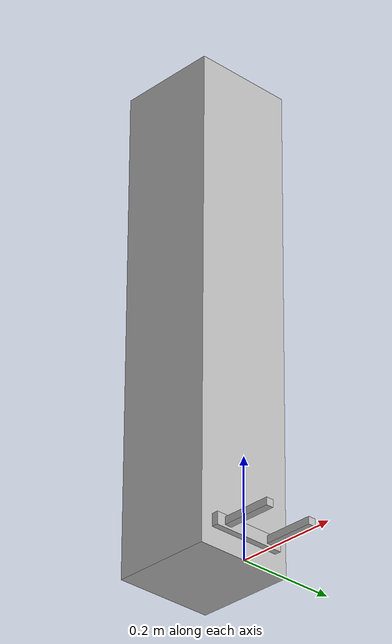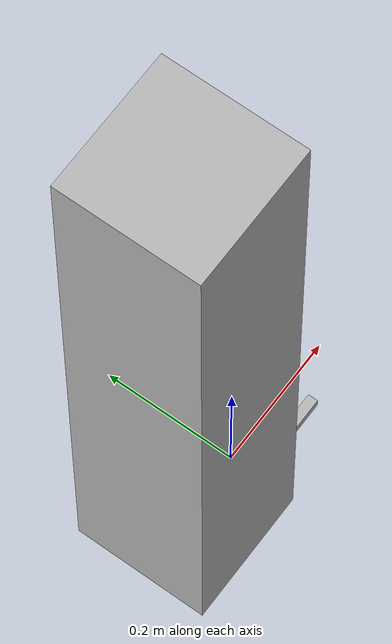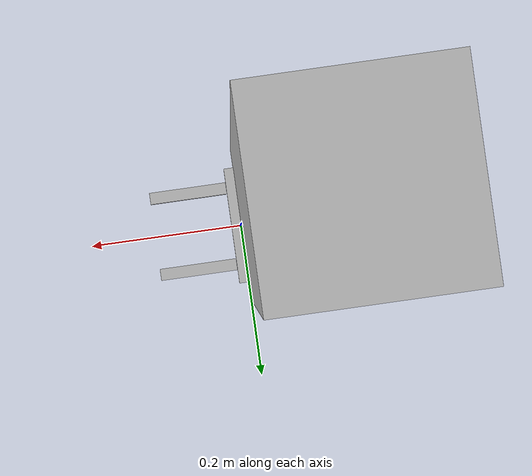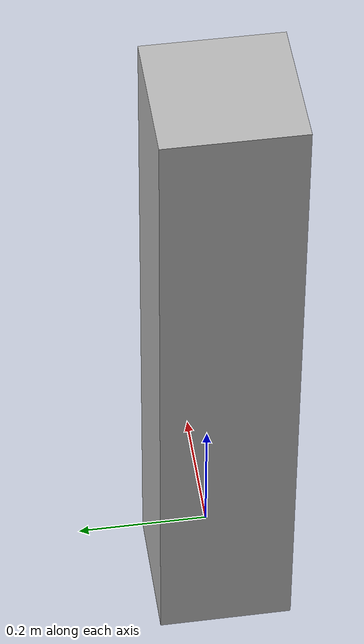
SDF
<?xml version="1.0"?>
<sdf version="1.6">
    <model name="grabber">

        <link name="riser">
            <pose>-0.1 0.0 0.5 0 0 0</pose>
            <inertial>
                <pose>0 0 -0.5 0 0 0</pose>
                <inertia>
                    <ixx>0.01</ixx>
                    <ixy>0</ixy>
                    <ixz>0</ixz>
                    <iyy>0.01</iyy>
                    <iyz>0</iyz>
                    <izz>0.01</izz>
                </inertia>
                <mass>10.0</mass>
            </inertial>
            <collision name="collision">
                <geometry>
                    <box>
                        <size>0.2 0.2 1.0</size>
                    </box>
                </geometry>
            </collision>
            <visual name="visual">
                <geometry>
                    <box>
                        <size>0.2 0.2 1.0</size>
                    </box>
                </geometry>
                <material>
                    <script>Gazebo/Purple</script>
                </material>
            </visual>
        </link>

        <link name="palm">
            <pose>0.0 0.0 0.05 0 0 0</pose>
            <inertial>
                <inertia>
                    <ixx>0.000189</ixx>
                    <ixy>0</ixy>
                    <ixz>0</ixz>
                    <iyy>0.000010</iyy>
                    <iyz>0</iyz>
                    <izz>0.000189</izz>
                </inertia>
                <mass>0.0985</mass>
            </inertial>
            <collision name="collision">
                <geometry>
                    <box>
                        <size>0.025 0.15 0.025</size>
                    </box>
                </geometry>
                <surface>
                    <contact>
                        <collide_bitmask>0xffff</collide_bitmask>
                    </contact>
                    <friction>
                        <ode>
                        <mu>100</mu>
                        <mu2>50</mu2>
                        </ode>
                    </friction>
                </surface>
            </collision>
            <visual name="visual">
                <geometry>
                    <box>
                        <size>0.025 0.15 0.025</size>
                    </box>
                </geometry>
                <material>
                    <script>Gazebo/Red</script>
                </material>
            </visual>
        </link>
        <link name="left_finger">
            <pose>0.0628 0.05 0.05 0 0 -1.57</pose>
            <inertial>
                <inertia>
                    <ixx>0.000020</ixx>
                    <ixy>0</ixy>
                    <ixz>0</ixz>
                    <iyy>0.0000008859</iyy>
                    <iyz>0</iyz>
                    <izz>0.000020</izz>
                </inertia>
                <mass>0.023625</mass>
            </inertial>
            <collision name="collision">
                <geometry>
                    <box>
                        <size>0.015 0.1 0.015</size>
                    </box>
                </geometry>
                <surface>
                    <contact>
                        <collide_bitmask>0xffff</collide_bitmask>
                    </contact>
                    <friction>
                        <ode>
                        <mu>100</mu>
                        <mu2>50</mu2>
                        </ode>
                    </friction>
                </surface>
            </collision>
            <visual name="visual">
                <geometry>
                    <box>
                        <size>0.015 0.1 0.015</size>
                    </box>
                </geometry>
                <material>
                    <script>Gazebo/Blue</script>
                </material>
            </visual>
        </link>
        <link name="right_finger">
            <pose>0.0628 -0.05 0.05 0 0 -1.57</pose>
            <inertial>
                <inertia>
                    <ixx>0.000020</ixx>
                    <ixy>0</ixy>
                    <ixz>0</ixz>
                    <iyy>0.0000008859</iyy>
                    <iyz>0</iyz>
                    <izz>0.000020</izz>
                </inertia>
                <mass>0.023625</mass>
            </inertial>
            <collision name="collision">
                <geometry>
                    <box>
                        <size>0.015 0.1 0.015</size>
                    </box>
                </geometry>
                <surface>
                    <contact>
                        <collide_bitmask>0xffff</collide_bitmask>
                    </contact>
                    <friction>
                        <ode>
                        <mu>100</mu>
                        <mu2>50</mu2>
                        </ode>
                    </friction>
                </surface>
            </collision>
            <visual name="visual">
                <geometry>
                    <box>
                        <size>0.015 0.1 0.015</size>
                    </box>
                </geometry>
                <material>
                    <script>Gazebo/Blue</script>
                </material>
            </visual>
        </link>

        <joint name="right_hand" type="prismatic">
            <parent>right_finger</parent>
            <child>palm</child>
            <axis>
                <limit>
                    <lower>0</lower>
                    <upper>0.04</upper>
                    <velocity>0.01</velocity>
                </limit>
                <xyz>0 -1 0</xyz>
            </axis>
        </joint>
        <joint name="left_hand" type="prismatic">
            <parent>left_finger</parent>
            <child>palm</child>
            <axis>
                <limit>
                    <lower>0</lower>
                    <upper>0.04</upper>
                    <velocity>0.01</velocity>
                </limit>
                <xyz>0 1 0</xyz>
            </axis>
        </joint>

        <joint name="tester" type="prismatic">
            <parent>riser</parent>
            <child>palm</child>
            <axis>
                <limit>
                    <lower>0</lower>
                    <upper>0.9</upper>

                </limit>
                <xyz>0 0 1</xyz>
            </axis>
        </joint>

        <plugin name="grabber_plugin" filename="libiarc_grabber_plugin.so">
            <namespace>firefly</namespace>
            <link_name1>right_finger</link_name1>
            <link_name2>left_finger</link_name2>
            <force_magnitude>10</force_magnitude>
        </plugin>
    </model>
</sdf>
